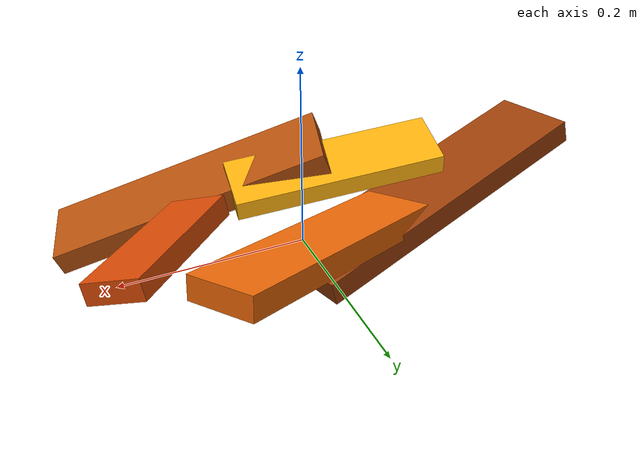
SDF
<?xml version="1.0"?>
<sdf version="1.6">
  <model name="cleannav_demo_leaf_pile">
    <static>true</static>
    <link name="link">
      <gravity>false</gravity>
      <!-- Deliberately visual-only: no collision, inertial, or dynamics. -->
      <visual name="leaf_brown_1">
        <pose>-0.14 0.02 0.035 0.10 0.20 0.25</pose>
        <geometry><box><size>0.34 0.09 0.025</size></box></geometry>
        <material><ambient>0.32 0.12 0.025 1</ambient><diffuse>0.62 0.25 0.04 1</diffuse></material>
      </visual>
      <visual name="leaf_brown_2">
        <pose>0.10 -0.07 0.045 -0.10 0.35 -0.30</pose>
        <geometry><box><size>0.30 0.08 0.025</size></box></geometry>
        <material><ambient>0.38 0.16 0.025 1</ambient><diffuse>0.72 0.32 0.05 1</diffuse></material>
      </visual>
      <visual name="leaf_orange_1">
        <pose>0.02 0.09 0.055 0.15 -0.20 0.50</pose>
        <geometry><box><size>0.28 0.075 0.025</size></box></geometry>
        <material><ambient>0.75 0.24 0.015 1</ambient><diffuse>0.95 0.42 0.03 1</diffuse></material>
      </visual>
      <visual name="leaf_yellow_1">
        <pose>-0.04 -0.01 0.075 -0.20 0.10 -0.15</pose>
        <geometry><box><size>0.22 0.065 0.022</size></box></geometry>
        <material><ambient>0.80 0.48 0.02 1</ambient><diffuse>0.98 0.68 0.05 1</diffuse></material>
      </visual>
      <visual name="leaf_orange_2">
        <pose>0.16 0.04 0.065 0.30 -0.15 0.85</pose>
        <geometry><box><size>0.18 0.06 0.022</size></box></geometry>
        <material><ambient>0.65 0.18 0.01 1</ambient><diffuse>0.88 0.30 0.02 1</diffuse></material>
      </visual>
    </link>
  </model>
</sdf>
